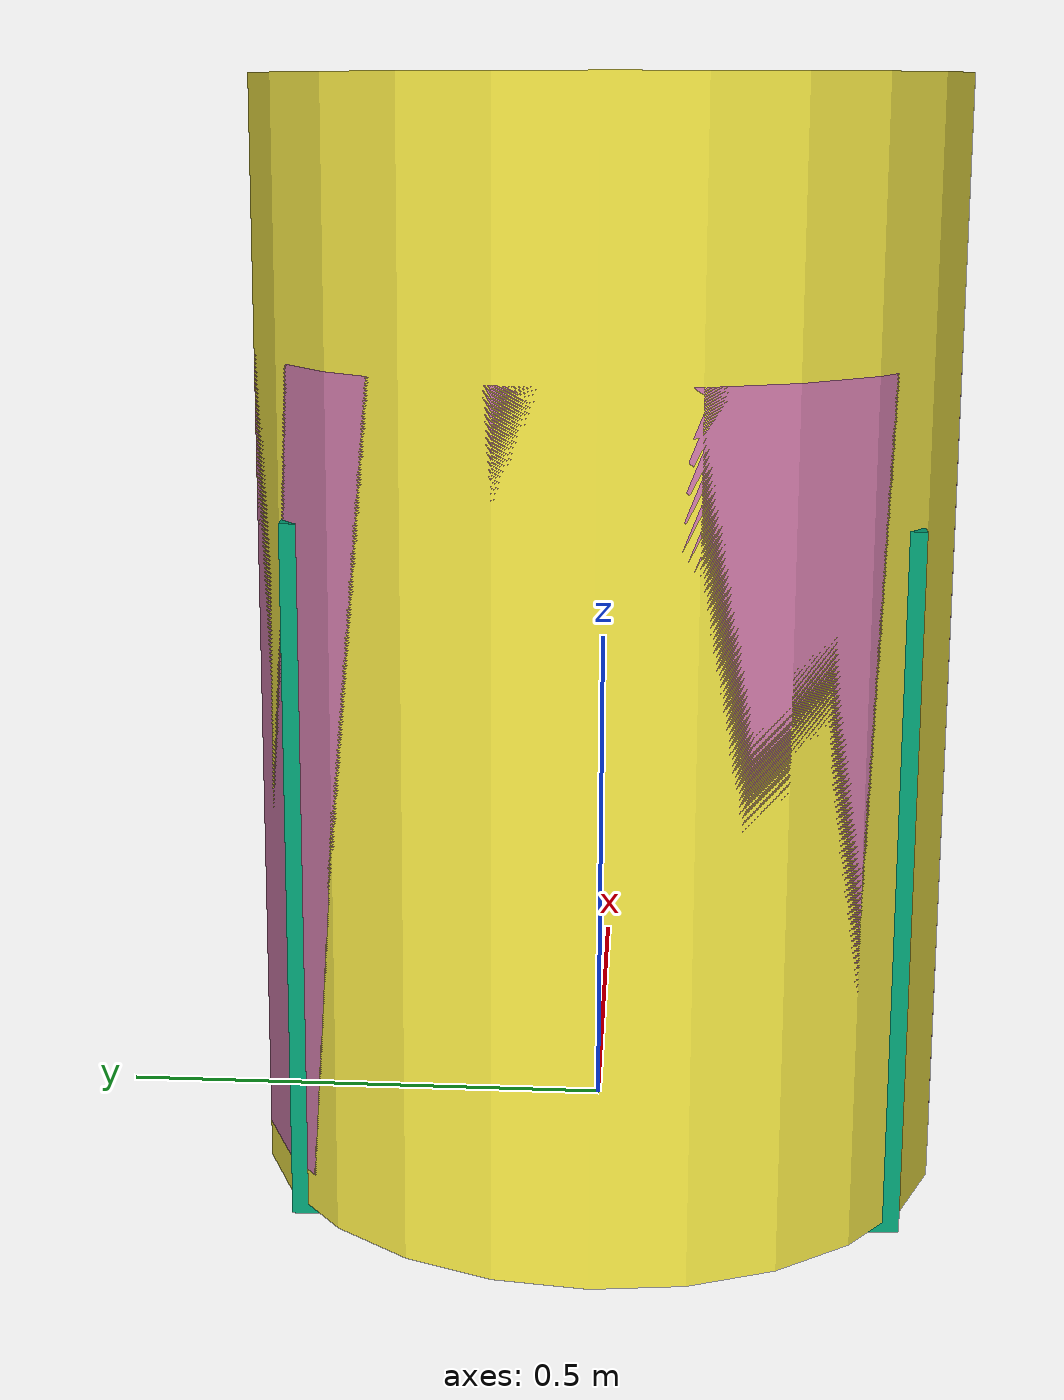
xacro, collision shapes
<?xml version="1.0"?>
<!-- Objects of ROS-TMS project -->
<robot name="objects_standalone"
       xmlns:sensor="http://playerstage.sourceforge.net/gazebo/xmlschema/#sensor"
       xmlns:controller="http://playerstage.sourceforge.net/gazebo/xmlschema/#controller"
       xmlns:interface="http://playerstage.sourceforge.net/gazebo/xmlschema/#interface"
       xmlns:xacro="http://ros.org/wiki/xacro">

  <!-- Import common properties -->
  <xacro:include filename="$(find rostms_description)/urdf/common_properties.urdf.xacro" />

  <!-- Used for fixing all components to 'world' frame of RViz and Gazebo 'world' -->
  <link name="world_link"/>

  <!-- Defines the component tags -->
  <xacro:include filename="$(find rostms_description)/urdf/objects.urdf.xacro" />
  <objects/>
</robot>

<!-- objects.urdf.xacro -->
<!-- Objects of ROS-TMS -->
<robot name="objects" xmlns:xacro="http://ros.org/wiki/xacro">

  <!-- Import all Gazebo-customization elements, including Gazebo colors -->
  <xacro:include filename="$(find rostms_description)/urdf/objects_gazebo.urdf.xacro" />

  <!-- meeting_chair -->
  <xacro:macro name="meeting_chair_link" params="num">
    <link name="meeting_chair${num}_x_link"/>

    <joint name="meeting_chair${num}_x_joint" type="prismatic">
      <parent link="world_link"/>
      <child link="meeting_chair${num}_x_link"/>
      <origin xyz="0 0 0" rpy="0 0 0"/>
      <limit effort="1000.0" lower="0." upper="15." velocity="0.5"/>
    </joint>

    <link name="meeting_chair${num}_y_link"/>

    <joint name="meeting_chair${num}_y_joint" type="prismatic">
      <parent link="meeting_chair${num}_x_link"/>
      <child link="meeting_chair${num}_y_link"/>
      <origin xyz="0 0 0" rpy="0 0 1.57079633"/>
      <limit effort="1000.0" lower="0." upper="8." velocity="0.5"/>
    </joint>

    <joint name="meeting_chair${num}_yaw_joint" type="continuous">
      <parent link="meeting_chair${num}_y_link"/>
      <child link="meeting_chair${num}_link"/>
      <origin xyz="0 0 0" rpy="0 0 0"/>
      <axis xyz="0 0 1"/>
    </joint>

    <link name="meeting_chair${num}_link">
      <visual>
        <geometry>
          <mesh filename="package://environmental_model/model/meeting_chair.dae"/>
        </geometry>
        <origin xyz="0.0 0.0 0.3978" rpy="0 0 0"/>
      </visual>
      <collision>
        <geometry>
          <cylinder radius="0.35" length="0.8"/>
        </geometry>
        <origin xyz="0.0 0.0 0.3978" rpy="0 0 0"/>
      </collision>
    </link>
  </xacro:macro>

  <xacro:macro name="objects">

    <!-- chair -->
    <link name="chair_x_link"/>

    <joint name="chair_x_joint" type="prismatic">
      <parent link="world_link"/>
      <child link="chair_x_link"/>
      <origin xyz="0 0 0" rpy="0 0 0"/>
      <limit effort="1000.0" lower="0." upper="15." velocity="0.5"/>
    </joint>

    <link name="chair_y_link"/>

    <joint name="chair_y_joint" type="prismatic">
      <parent link="chair_x_link"/>
      <child link="chair_y_link"/>
      <origin xyz="0 0 0" rpy="0 0 1.57079633"/>
      <limit effort="1000.0" lower="0." upper="8." velocity="0.5"/>
    </joint>

    <joint name="chair_yaw_joint" type="continuous">
      <parent link="chair_y_link"/>
      <child link="chair_link"/>
      <origin xyz="0 0 0" rpy="0 0 0"/>
      <axis xyz="0 0 1"/>
    </joint>

    <link name="chair_link">
      <visual>
        <geometry>
          <mesh filename="package://environmental_model/model/chair.dae"/>
        </geometry>
        <origin xyz="0.0 0.0 0.51" rpy="0.0 0.0 0.0"/>
      </visual>
      <collision>
        <geometry>
          <cylinder radius="0.35" length="1.1"/>
        </geometry>
        <origin xyz="0.0 0.0 0.51" rpy="0.0 0.0 0.0"/>
      </collision>
    </link>

    <!-- refrigerator -->

    <!-- Add meeting_chair -->
    <xacro:meeting_chair_link num="1"/>
    <xacro:meeting_chair_link num="2"/>
    <xacro:meeting_chair_link num="3"/>
    <xacro:meeting_chair_link num="4"/>

    <!-- wagon -->
    <link name="wagon_x_link"/>

    <joint name="wagon_x_joint" type="prismatic">
      <parent link="world_link"/>
      <child link="wagon_x_link"/>
      <origin xyz="0 0 0" rpy="0 0 0"/>
      <limit effort="1000.0" lower="0." upper="15." velocity="0.5"/>
    </joint>

    <link name="wagon_y_link"/>

    <joint name="wagon_y_joint" type="prismatic">
      <parent link="wagon_x_link"/>
      <child link="wagon_y_link"/>
      <origin xyz="0 0 0" rpy="0 0 1.57079633"/>
      <limit effort="1000.0" lower="0." upper="8." velocity="0.5"/>
    </joint>

    <joint name="wagon_yaw_joint" type="continuous">
      <parent link="wagon_y_link"/>
      <child link="wagon_link"/>
      <origin xyz="0 0 0" rpy="0 0 0"/>
      <axis xyz="0 0 1"/>
    </joint>

    <link name="wagon_link">
      <visual>
        <geometry>
          <mesh filename="package://environmental_model/model/wagon.dae"/>
        </geometry>
        <origin xyz="0. 0. 0.3" rpy="0 0 0"/>
      </visual>
      <collision>
        <geometry>
          <box size="0.6 0.4 0.7"/>
        </geometry>
        <origin xyz="0. 0. 0.3" rpy="0 0 0"/>
      </collision>
    </link>

    <!-- object -->
    <!-- chipstar_red -->
    <link name="chipstar_red_x_link"/>

    <joint name="chipstar_red_x_joint" type="prismatic">
      <parent link="world_link"/>
      <child link="chipstar_red_x_link"/>
      <origin rpy="0 0 0" xyz="0 0 0"/>
      <limit effort="1000.0" lower="0." upper="15." velocity="0.5"/>
    </joint>

    <link name="chipstar_red_y_link"/>

    <joint name="chipstar_red_y_joint" type="prismatic">
      <parent link="chipstar_red_x_link"/>
      <child link="chipstar_red_y_link"/>
      <origin rpy="0 0 1.57079633" xyz="0 0 0"/>
      <limit effort="1000.0" lower="0." upper="8." velocity="0.5"/>
    </joint>

    <link name="chipstar_red_z_link"/>

    <joint name="chipstar_red_z_joint" type="prismatic">
      <parent link="chipstar_red_y_link"/>
      <child link="chipstar_red_z_link"/>
      <origin rpy="0 -1.57079633 0" xyz="0 0 0"/>
      <limit effort="1000.0" lower="0." upper="3." velocity="0.5"/>
    </joint>

    <link name="chipstar_red_yaw_link"/>
    <joint name="chipstar_red_yaw_joint" type="continuous">
      <parent link="chipstar_red_z_link"/>
      <child link="chipstar_red_yaw_link"/>
      <origin rpy="-1.57079633 0 -1.57079633" xyz="0 0 0"/>
      <axis xyz="0 0 1"/>
    </joint>
    <link name="chipstar_red_pitch_link"/>
    <joint name="chipstar_red_pitch_joint" type="continuous">
      <parent link="chipstar_red_yaw_link"/>
      <child link="chipstar_red_pitch_link"/>
      <origin rpy="0 0 0" xyz="0 0 0"/>
      <axis xyz="0 1 0"/>
    </joint>
    <joint name="chipstar_red_roll_joint" type="continuous">
      <parent link="chipstar_red_pitch_link"/>
      <child link="chipstar_red_link"/>
      <origin rpy="0 0 0" xyz="0 0 0"/>
      <axis xyz="1 0 0"/>
    </joint>

    <link name="chipstar_red_link">
      <visual>
        <geometry>
          <mesh filename="package://environmental_model/model/chipstar_red.dae"/>
        </geometry>
        <origin rpy="0 0 0" xyz="0. 0. 0."/>
      </visual>
      <collision>
        <geometry>
          <cylinder radius="0.001" length="0.001"/>
        </geometry>
        <origin xyz="0 0 0" rpy="0. 0. 0."/>
      </collision>
    </link>

    <!-- greentea_bottle -->
    <link name="greentea_bottle_x_link"/>

    <joint name="greentea_bottle_x_joint" type="prismatic">
      <parent link="world_link"/>
      <child link="greentea_bottle_x_link"/>
      <origin rpy="0 0 0" xyz="0 0 0"/>
      <limit effort="1000.0" lower="0." upper="15." velocity="0.5"/>
    </joint>

    <link name="greentea_bottle_y_link"/>

    <joint name="greentea_bottle_y_joint" type="prismatic">
      <parent link="greentea_bottle_x_link"/>
      <child link="greentea_bottle_y_link"/>
      <origin rpy="0 0 1.57079633" xyz="0 0 0"/>
      <limit effort="1000.0" lower="0." upper="8." velocity="0.5"/>
    </joint>

    <link name="greentea_bottle_z_link"/>

    <joint name="greentea_bottle_z_joint" type="prismatic">
      <parent link="greentea_bottle_y_link"/>
      <child link="greentea_bottle_z_link"/>
      <origin rpy="0 -1.57079633 0" xyz="0 0 0"/>
      <limit effort="1000.0" lower="0." upper="3." velocity="0.5"/>
    </joint>

    <link name="greentea_bottle_yaw_link"/>
    <joint name="greentea_bottle_yaw_joint" type="continuous">
      <parent link="greentea_bottle_z_link"/>
      <child link="greentea_bottle_yaw_link"/>
      <origin rpy="-1.57079633 0 -1.57079633" xyz="0 0 0"/>
      <axis xyz="0 0 1"/>
    </joint>
    <link name="greentea_bottle_pitch_link"/>
    <joint name="greentea_bottle_pitch_joint" type="continuous">
      <parent link="greentea_bottle_yaw_link"/>
      <child link="greentea_bottle_pitch_link"/>
      <origin rpy="0 0 0" xyz="0 0 0"/>
      <axis xyz="0 1 0"/>
    </joint>
    <joint name="greentea_bottle_roll_joint" type="continuous">
      <parent link="greentea_bottle_pitch_link"/>
      <child link="greentea_bottle_link"/>
      <origin rpy="0 0 0" xyz="0 0 0"/>
      <axis xyz="1 0 0"/>
    </joint>

    <link name="greentea_bottle_link">
      <visual>
        <geometry>
          <mesh filename="package://environmental_model/model/greentea_bottle.dae"/>
        </geometry>
        <origin rpy="0 0 0" xyz="0. 0. 0."/>
      </visual>
      <collision>
        <geometry>
          <cylinder radius="0.001" length="0.001"/>
        </geometry>
        <origin xyz="0 0 0" rpy="0. 0. 0."/>
      </collision>
    </link>

    <!-- cancoffee -->
    <link name="cancoffee_x_link"/>

    <joint name="cancoffee_x_joint" type="prismatic">
      <parent link="world_link"/>
      <child link="cancoffee_x_link"/>
      <origin rpy="0 0 0" xyz="0 0 0"/>
      <limit effort="1000.0" lower="0." upper="15." velocity="0.5"/>
    </joint>

    <link name="cancoffee_y_link"/>

    <joint name="cancoffee_y_joint" type="prismatic">
      <parent link="cancoffee_x_link"/>
      <child link="cancoffee_y_link"/>
      <origin rpy="0 0 1.57079633" xyz="0 0 0"/>
      <limit effort="1000.0" lower="0." upper="8." velocity="0.5"/>
    </joint>

    <link name="cancoffee_z_link"/>

    <joint name="cancoffee_z_joint" type="prismatic">
      <parent link="cancoffee_y_link"/>
      <child link="cancoffee_z_link"/>
      <origin rpy="0 -1.57079633 0" xyz="0 0 0"/>
      <limit effort="1000.0" lower="0." upper="3." velocity="0.5"/>
    </joint>

    <link name="cancoffee_yaw_link"/>
    <joint name="cancoffee_yaw_joint" type="continuous">
      <parent link="cancoffee_z_link"/>
      <child link="cancoffee_yaw_link"/>
      <origin rpy="-1.57079633 0 -1.57079633" xyz="0 0 0"/>
      <axis xyz="0 0 1"/>
    </joint>
    <link name="cancoffee_pitch_link"/>
    <joint name="cancoffee_pitch_joint" type="continuous">
      <parent link="cancoffee_yaw_link"/>
      <child link="cancoffee_pitch_link"/>
      <origin rpy="0 0 0" xyz="0 0 0"/>
      <axis xyz="0 1 0"/>
    </joint>
    <joint name="cancoffee_roll_joint" type="continuous">
      <parent link="cancoffee_pitch_link"/>
      <child link="cancoffee_link"/>
      <origin rpy="0 0 0" xyz="0 0 0"/>
      <axis xyz="1 0 0"/>
    </joint>

    <link name="cancoffee_link">
      <visual>
        <geometry>
          <mesh filename="package://environmental_model/model/cancoffee.dae"/>
        </geometry>
        <origin rpy="0 0 0" xyz="0. 0. 0."/>
      </visual>
      <collision>
        <geometry>
          <cylinder radius="0.001" length="0.001"/>
        </geometry>
        <origin xyz="0 0 0" rpy="0. 0. 0."/>
      </collision>
    </link>

    <!-- soysauce_bottle_black -->
    <link name="soysauce_bottle_black_x_link"/>

    <joint name="soysauce_bottle_black_x_joint" type="prismatic">
      <parent link="world_link"/>
      <child link="soysauce_bottle_black_x_link"/>
      <origin rpy="0 0 0" xyz="0 0 0"/>
      <limit effort="1000.0" lower="0." upper="15." velocity="0.5"/>
    </joint>

    <link name="soysauce_bottle_black_y_link"/>

    <joint name="soysauce_bottle_black_y_joint" type="prismatic">
      <parent link="soysauce_bottle_black_x_link"/>
      <child link="soysauce_bottle_black_y_link"/>
      <origin rpy="0 0 1.57079633" xyz="0 0 0"/>
      <limit effort="1000.0" lower="0." upper="8." velocity="0.5"/>
    </joint>

    <link name="soysauce_bottle_black_z_link"/>

    <joint name="soysauce_bottle_black_z_joint" type="prismatic">
      <parent link="soysauce_bottle_black_y_link"/>
      <child link="soysauce_bottle_black_z_link"/>
      <origin rpy="0 -1.57079633 0" xyz="0 0 0"/>
      <limit effort="1000.0" lower="0." upper="3." velocity="0.5"/>
    </joint>

    <link name="soysauce_bottle_black_yaw_link"/>
    <joint name="soysauce_bottle_black_yaw_joint" type="continuous">
      <parent link="soysauce_bottle_black_z_link"/>
      <child link="soysauce_bottle_black_yaw_link"/>
      <origin rpy="-1.57079633 0 -1.57079633" xyz="0 0 0"/>
      <axis xyz="0 0 1"/>
    </joint>
    <link name="soysauce_bottle_black_pitch_link"/>
    <joint name="soysauce_bottle_black_pitch_joint" type="continuous">
      <parent link="soysauce_bottle_black_yaw_link"/>
      <child link="soysauce_bottle_black_pitch_link"/>
      <origin rpy="0 0 0" xyz="0 0 0"/>
      <axis xyz="0 1 0"/>
    </joint>
    <joint name="soysauce_bottle_black_roll_joint" type="continuous">
      <parent link="soysauce_bottle_black_pitch_link"/>
      <child link="soysauce_bottle_black_link"/>
      <origin rpy="0 0 0" xyz="0 0 0"/>
      <axis xyz="1 0 0"/>
    </joint>

    <link name="soysauce_bottle_black_link">
      <visual>
        <geometry>
          <mesh filename="package://environmental_model/model/soysauce_bottle_black.dae"/>
        </geometry>
        <origin rpy="0 0 0" xyz="0. 0. 0."/>
      </visual>
      <collision>
        <geometry>
          <cylinder radius="0.001" length="0.001"/>
        </geometry>
        <origin xyz="0 0 0" rpy="0. 0. 0."/>
      </collision>
    </link>

    <objects_sim/>

  </xacro:macro>
</robot>
